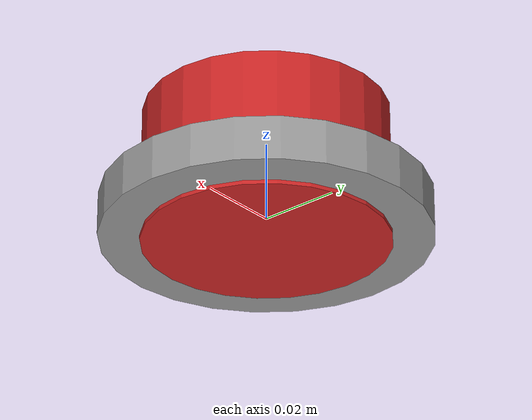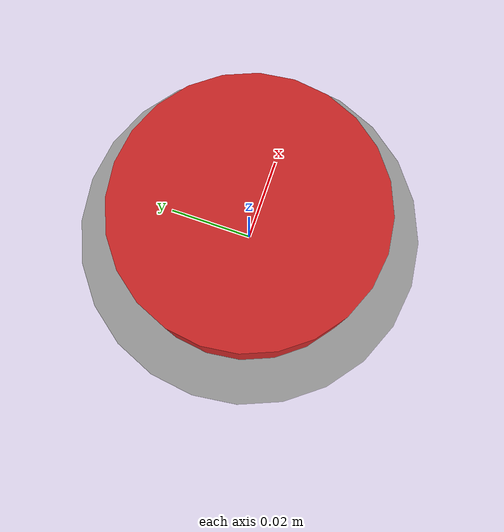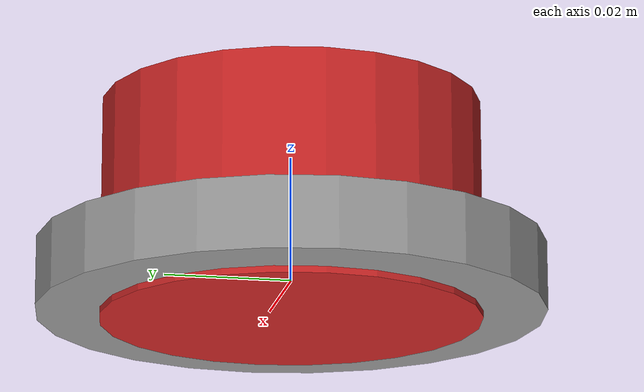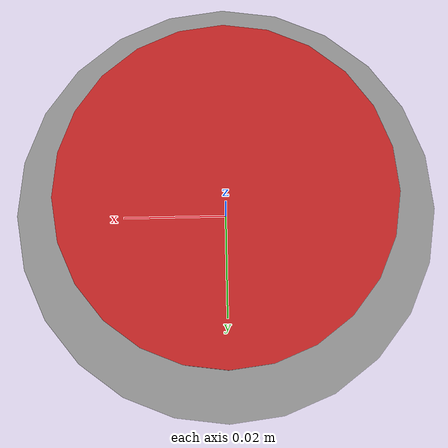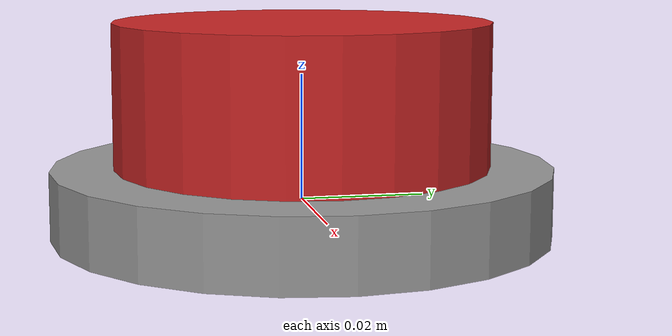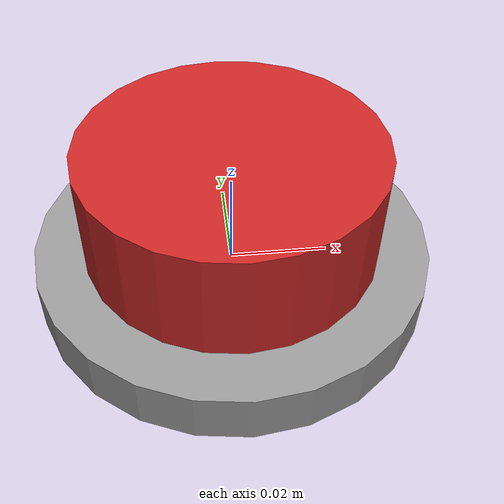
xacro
<?xml version="1.0"?>
<robot xmlns:xacro="http://www.ros.org/wiki/xacro">

    <xacro:property name="base_radius" value="0.04"/>
    <xacro:property name="base_height" value="0.011"/>
    <xacro:property name="laz_radius" value="0.03"/>
    <xacro:property name="laz_height" value="0.035"/>
    <xacro:property name="mass" value="0.1">

    </xacro:property>

    <gazebo reference="laz_base">
        <material>Gazebo/Grey</material>
        <mu1>0.2</mu1>
        <mu2>0.2</mu2>
    </gazebo>

    <link name="laz_base">
        <visual>
            <geometry>
                <cylinder radius="${base_radius}" length="${base_height}"/>
            </geometry>
        </visual>

        <collision>
            <geometry>
                <cylinder radius="${base_radius}" length="${base_height}"/>
            </geometry>
        </collision>

        <inertial>
            <mass value="${mass}"/>
            <inertia ixx="${(1/12) * mass * (3 * base_radius * base_radius + base_height * base_height)}" ixy="0.0" ixz="0.0"
                    iyy="${(1/12) * mass * (3 * base_radius * base_radius + base_height * base_height)}" iyz="0.0"
                    izz="${(1/12) * mass * base_radius * base_radius}"/>
        </inertial>
    </link>

    <gazebo reference="laz_rot">
        <material>Gazebo/RedGlow</material>
        <mu1>0.2</mu1>
        <mu2>0.2</mu2>

        <!--|Crear el sensor para Gazebo-->
        <sensor type="ray" name="laz">
            <always_on>true</always_on>
            <pose>0 0 ${laz_height/4} 0 0 0</pose>
            <visualize>false</visualize>
            <update_rate>6.0</update_rate>

            <ray>
                <scan>
                    <horizontal>
                        <samples>281</samples>
                        <resolution>1</resolution>
                        <min_angle>-${pi}</min_angle>
                        <max_angle>${pi}</max_angle>
                    </horizontal>
                </scan>
                <range>
                    <min>0.15</min>
                    <max>12</max>
                    <resolution>0.015</resolution>
                </range>
            </ray>

            <!--*Añadir Ruido-->
            <noise>
                <type>gaussian</type>
                <mean>0.0</mean>
                <stddev>0.01</stddev>
            </noise>

            <plugin name="gazebo_ros_laser_controller" filename="libgazebo_ros_laser.so">
                <topicName>/R2/scan</topicName>
                <frameName>laz_rot</frameName>
                <updateRate>6.0</updateRate>
                <minRange>0.15</minRange>
                <maxRange>12.0</maxRange>
                <noise>
                    <type>gaussian</type>
                    <mean>0.0</mean>
                    <stddev>0.01</stddev>
                </noise>
            </plugin>
        </sensor>

    </gazebo>

    <link name="laz_rot">
        <visual>
            <geometry>
                <cylinder radius="${laz_radius}" length="${laz_height}"/>
            </geometry>
        </visual>

        <collision>
            <geometry>
                <cylinder radius="${laz_radius}" length="${laz_height}"/>
            </geometry>
        </collision>

        <inertial>
            <mass value="${mass}"/>
            <inertia ixx="${(1/12) * mass * (3 * laz_radius * laz_radius + laz_height * laz_height)}" ixy="0.0" ixz="0.0"
                    iyy="${(1/12) * mass * (3 * laz_radius * laz_radius + laz_height * laz_height)}" iyz="0.0"
                    izz="${(1/12) * mass * (laz_radius * laz_radius)}"/>
        </inertial>
    </link>

    <joint name="lazRot" type="fixed">
        <parent link="laz_base"/>
        <child link="laz_rot"/>
        <axis xyz="0.0 0.0 1.0"/>
        <origin xyz="0.0 0.0 ${base_height}"/>
    </joint>

</robot>
